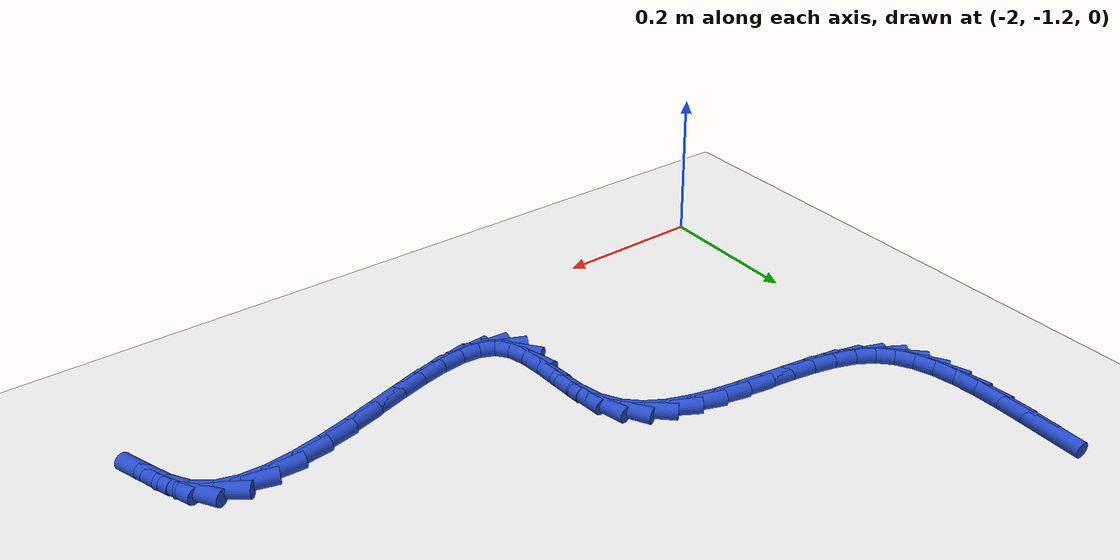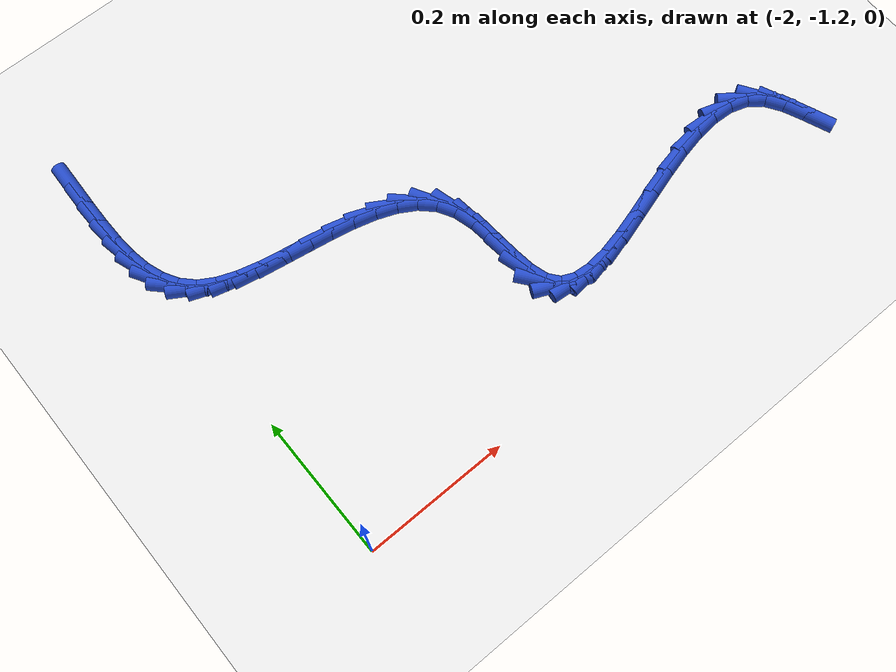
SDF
<sdf version="1.6">
 <world name="default">
  <model name="ground_plane">
   <static>1</static>
   <link name="link">
    <collision name="collision">
     <geometry><plane><normal>0 0 1</normal><size>100 100</size></plane></geometry>
     <surface><friction><ode><mu>100</mu><mu2>50</mu2></ode></friction></surface>
    </collision>
    <visual name="visual">
     <cast_shadows>0</cast_shadows>
     <geometry><plane><normal>0 0 1</normal><size>100 100</size></plane></geometry>
     <material>
      <script><uri>file://media/materials/scripts/gazebo.material</uri><name>Gazebo/WhiteGlow</name></script>
     </material>
    </visual>
   </link>
  </model>
  <model name="line">
   <link name="link_144">
    <pose>-2.011408197093392 -0.5827846574781463 0.01 0 1.57 1.5375655119772171</pose>
    <collision name="collision">
     <geometry><cylinder><radius>0.01</radius><length>0.08</length></cylinder></geometry>
    </collision>
    <visual name="visual">
     <material>
      <script><name>Gazebo/Blue</name><uri>file://media/materials/scripts/gazebo.material</uri></script>
     </material>
     <geometry><cylinder><radius>0.01</radius><length>0.08</length></cylinder></geometry>
    </visual>
   </link>
   <link name="link_145">
    <pose>-2.012506943540537 -0.6158365696737208 0.01 0 1.57 1.5535705072917212</pose>
    <collision name="collision">
     <geometry><cylinder><radius>0.01</radius><length>0.08</length></cylinder></geometry>
    </collision>
    <visual name="visual">
     <material>
      <script><name>Gazebo/Blue</name><uri>file://media/materials/scripts/gazebo.material</uri></script>
     </material>
     <geometry><cylinder><radius>0.01</radius><length>0.08</length></cylinder></geometry>
    </visual>
   </link>
   <link name="link_146">
    <pose>-2.0130630635723454 -0.648117473638683 0.01 0 1.57 -1.5490477566503293</pose>
    <collision name="collision">
     <geometry><cylinder><radius>0.01</radius><length>0.08</length></cylinder></geometry>
    </collision>
    <visual name="visual">
     <material>
      <script><name>Gazebo/Blue</name><uri>file://media/materials/scripts/gazebo.material</uri></script>
     </material>
     <geometry><cylinder><radius>0.01</radius><length>0.08</length></cylinder></geometry>
    </visual>
   </link>
   <link name="link_147">
    <pose>-2.0123883758188064 -0.6791347483313681 0.01 0 1.57 -1.482388076195657</pose>
    <collision name="collision">
     <geometry><cylinder><radius>0.01</radius><length>0.08</length></cylinder></geometry>
    </collision>
    <visual name="visual">
     <material>
      <script><name>Gazebo/Blue</name><uri>file://media/materials/scripts/gazebo.material</uri></script>
     </material>
     <geometry><cylinder><radius>0.01</radius><length>0.08</length></cylinder></geometry>
    </visual>
   </link>
   <link name="link_148">
    <pose>-2.00979469890991 -0.7083957727101123 0.01 0 1.57 -1.3805866140563354</pose>
    <collision name="collision">
     <geometry><cylinder><radius>0.01</radius><length>0.08</length></cylinder></geometry>
    </collision>
    <visual name="visual">
     <material>
      <script><name>Gazebo/Blue</name><uri>file://media/materials/scripts/gazebo.material</uri></script>
     </material>
     <geometry><cylinder><radius>0.01</radius><length>0.08</length></cylinder></geometry>
    </visual>
   </link>
   <link name="link_149">
    <pose>-2.0045938514756445 -0.7354079257332513 0.01 0 1.57 -1.234067620578618</pose>
    <collision name="collision">
     <geometry><cylinder><radius>0.01</radius><length>0.08</length></cylinder></geometry>
    </collision>
    <visual name="visual">
     <material>
      <script><name>Gazebo/Blue</name><uri>file://media/materials/scripts/gazebo.material</uri></script>
     </material>
     <geometry><cylinder><radius>0.01</radius><length>0.08</length></cylinder></geometry>
    </visual>
   </link>
   <link name="link_150">
    <pose>-1.9960976521460005 -0.7596785863591213 0.01 0 1.57 -1.0353618430482645</pose>
    <collision name="collision">
     <geometry><cylinder><radius>0.01</radius><length>0.08</length></cylinder></geometry>
    </collision>
    <visual name="visual">
     <material>
      <script><name>Gazebo/Blue</name><uri>file://media/materials/scripts/gazebo.material</uri></script>
     </material>
     <geometry><cylinder><radius>0.01</radius><length>0.08</length></cylinder></geometry>
    </visual>
   </link>
   <link name="link_151">
    <pose>-1.9836179195509676 -0.7807151335460583 0.01 0 1.57 -0.7900015347232652</pose>
    <collision name="collision">
     <geometry><cylinder><radius>0.01</radius><length>0.08</length></cylinder></geometry>
    </collision>
    <visual name="visual">
     <material>
      <script><name>Gazebo/Blue</name><uri>file://media/materials/scripts/gazebo.material</uri></script>
     </material>
     <geometry><cylinder><radius>0.01</radius><length>0.08</length></cylinder></geometry>
    </visual>
   </link>
   <link name="link_152">
    <pose>-1.966466625082608 -0.7980250669632946 0.01 0 1.57 -0.5430174906835472</pose>
    <collision name="collision">
     <geometry><cylinder><radius>0.01</radius><length>0.08</length></cylinder></geometry>
    </collision>
    <visual name="visual">
     <material>
      <script><name>Gazebo/Blue</name><uri>file://media/materials/scripts/gazebo.material</uri></script>
     </material>
     <geometry><cylinder><radius>0.01</radius><length>0.08</length></cylinder></geometry>
    </visual>
   </link>
   <link name="link_153">
    <pose>-1.9443111703747151 -0.8113967433155336 0.01 0 1.57 -0.36577152715081634</pose>
    <collision name="collision">
     <geometry><cylinder><radius>0.01</radius><length>0.08</length></cylinder></geometry>
    </collision>
    <visual name="visual">
     <material>
      <script><name>Gazebo/Blue</name><uri>file://media/materials/scripts/gazebo.material</uri></script>
     </material>
     <geometry><cylinder><radius>0.01</radius><length>0.08</length></cylinder></geometry>
    </visual>
   </link>
   <link name="link_154">
    <pose>-1.9179337930631957 -0.821499450353367 0.01 0 1.57 -0.25372022160671065</pose>
    <collision name="collision">
     <geometry><cylinder><radius>0.01</radius><length>0.08</length></cylinder></geometry>
    </collision>
    <visual name="visual">
     <material>
      <script><name>Gazebo/Blue</name><uri>file://media/materials/scripts/gazebo.material</uri></script>
     </material>
     <geometry><cylinder><radius>0.01</radius><length>0.08</length></cylinder></geometry>
    </visual>
   </link>
   <link name="link_155">
    <pose>-1.8883347320797776 -0.8291747380338208 0.01 0 1.57 -0.18908170009375883</pose>
    <collision name="collision">
     <geometry><cylinder><radius>0.01</radius><length>0.08</length></cylinder></geometry>
    </collision>
    <visual name="visual">
     <material>
      <script><name>Gazebo/Blue</name><uri>file://media/materials/scripts/gazebo.material</uri></script>
     </material>
     <geometry><cylinder><radius>0.01</radius><length>0.08</length></cylinder></geometry>
    </visual>
   </link>
   <link name="link_156">
    <pose>-1.8565142263561911 -0.8352641563139214 0.01 0 1.57 -0.16037886778629465</pose>
    <collision name="collision">
     <geometry><cylinder><radius>0.01</radius><length>0.08</length></cylinder></geometry>
    </collision>
    <visual name="visual">
     <material>
      <script><name>Gazebo/Blue</name><uri>file://media/materials/scripts/gazebo.material</uri></script>
     </material>
     <geometry><cylinder><radius>0.01</radius><length>0.08</length></cylinder></geometry>
    </visual>
   </link>
   <link name="link_157">
    <pose>-1.8234725148241646 -0.8406092551506948 0.01 0 1.57 -0.1621796730817714</pose>
    <collision name="collision">
     <geometry><cylinder><radius>0.01</radius><length>0.08</length></cylinder></geometry>
    </collision>
    <visual name="visual">
     <material>
      <script><name>Gazebo/Blue</name><uri>file://media/materials/scripts/gazebo.material</uri></script>
     </material>
     <geometry><cylinder><radius>0.01</radius><length>0.08</length></cylinder></geometry>
    </visual>
   </link>
   <link name="link_158">
    <pose>-1.790209836415429 -0.8460515845011677 0.01 0 1.57 -0.19397221060614006</pose>
    <collision name="collision">
     <geometry><cylinder><radius>0.01</radius><length>0.08</length></cylinder></geometry>
    </collision>
    <visual name="visual">
     <material>
      <script><name>Gazebo/Blue</name><uri>file://media/materials/scripts/gazebo.material</uri></script>
     </material>
     <geometry><cylinder><radius>0.01</radius><length>0.08</length></cylinder></geometry>
    </visual>
   </link>
   <link name="link_159">
    <pose>-1.7577264300617137 -0.8524326943223662 0.01 0 1.57 -0.25980357929480663</pose>
    <collision name="collision">
     <geometry><cylinder><radius>0.01</radius><length>0.08</length></cylinder></geometry>
    </collision>
    <visual name="visual">
     <material>
      <script><name>Gazebo/Blue</name><uri>file://media/materials/scripts/gazebo.material</uri></script>
     </material>
     <geometry><cylinder><radius>0.01</radius><length>0.08</length></cylinder></geometry>
    </visual>
   </link>
   <link name="link_160">
    <pose>-1.7270225346947476 -0.8605941345713164 0.01 0 1.57 -0.3685228372203694</pose>
    <collision name="collision">
     <geometry><cylinder><radius>0.01</radius><length>0.08</length></cylinder></geometry>
    </collision>
    <visual name="visual">
     <material>
      <script><name>Gazebo/Blue</name><uri>file://media/materials/scripts/gazebo.material</uri></script>
     </material>
     <geometry><cylinder><radius>0.01</radius><length>0.08</length></cylinder></geometry>
    </visual>
   </link>
   <link name="link_161">
    <pose>-1.6990983892462612 -0.8713774552050453 0.01 0 1.57 -0.5330862943904855</pose>
    <collision name="collision">
     <geometry><cylinder><radius>0.01</radius><length>0.08</length></cylinder></geometry>
    </collision>
    <visual name="visual">
     <material>
      <script><name>Gazebo/Blue</name><uri>file://media/materials/scripts/gazebo.material</uri></script>
     </material>
     <geometry><cylinder><radius>0.01</radius><length>0.08</length></cylinder></geometry>
    </visual>
   </link>
   <link name="link_162">
    <pose>-1.6749542326479838 -0.8856242061805786 0.01 0 1.57 -0.7639802757959904</pose>
    <collision name="collision">
     <geometry><cylinder><radius>0.01</radius><length>0.08</length></cylinder></geometry>
    </collision>
    <visual name="visual">
     <material>
      <script><name>Gazebo/Blue</name><uri>file://media/materials/scripts/gazebo.material</uri></script>
     </material>
     <geometry><cylinder><radius>0.01</radius><length>0.08</length></cylinder></geometry>
    </visual>
   </link>
   <link name="link_163">
    <pose>-1.655590303831645 -0.9041759374549427 0.01 0 1.57 -1.0502910620888788</pose>
    <collision name="collision">
     <geometry><cylinder><radius>0.01</radius><length>0.08</length></cylinder></geometry>
    </collision>
    <visual name="visual">
     <material>
      <script><name>Gazebo/Blue</name><uri>file://media/materials/scripts/gazebo.material</uri></script>
     </material>
     <geometry><cylinder><radius>0.01</radius><length>0.08</length></cylinder></geometry>
    </visual>
   </link>
   <link name="link_164">
    <pose>-1.642006106841814 -0.9278734543143657 0.01 0 1.57 -1.3135320265012669</pose>
    <collision name="collision">
     <geometry><cylinder><radius>0.01</radius><length>0.08</length></cylinder></geometry>
    </collision>
    <visual name="visual">
     <material>
      <script><name>Gazebo/Blue</name><uri>file://media/materials/scripts/gazebo.material</uri></script>
     </material>
     <geometry><cylinder><radius>0.01</radius><length>0.08</length></cylinder></geometry>
    </visual>
   </link>
   <link name="link_165">
    <pose>-1.6344078701818325 -0.9567537255346816 0.01 0 1.57 -1.4545430743227798</pose>
    <collision name="collision">
     <geometry><cylinder><radius>0.01</radius><length>0.08</length></cylinder></geometry>
    </collision>
    <visual name="visual">
     <material>
      <script><name>Gazebo/Blue</name><uri>file://media/materials/scripts/gazebo.material</uri></script>
     </material>
     <geometry><cylinder><radius>0.01</radius><length>0.08</length></cylinder></geometry>
    </visual>
   </link>
   <link name="link_166">
    <pose>-1.6306982690775231 -0.9885194991426001 0.01 0 1.57 -1.4978328138608137</pose>
    <collision name="collision">
     <geometry><cylinder><radius>0.01</radius><length>0.08</length></cylinder></geometry>
    </collision>
    <visual name="visual">
     <material>
      <script><name>Gazebo/Blue</name><uri>file://media/materials/scripts/gazebo.material</uri></script>
     </material>
     <geometry><cylinder><radius>0.01</radius><length>0.08</length></cylinder></geometry>
    </visual>
   </link>
   <link name="link_167">
    <pose>-1.6283642027698078 -1.0204522119060808 0.01 0 1.57 -1.4531829214655159</pose>
    <collision name="collision">
     <geometry><cylinder><radius>0.01</radius><length>0.08</length></cylinder></geometry>
    </collision>
    <visual name="visual">
     <material>
      <script><name>Gazebo/Blue</name><uri>file://media/materials/scripts/gazebo.material</uri></script>
     </material>
     <geometry><cylinder><radius>0.01</radius><length>0.08</length></cylinder></geometry>
    </visual>
   </link>
   <link name="link_168">
    <pose>-1.6248925704996062 -1.049833300593084 0.01 0 1.57 -1.2835673778462682</pose>
    <collision name="collision">
     <geometry><cylinder><radius>0.01</radius><length>0.08</length></cylinder></geometry>
    </collision>
    <visual name="visual">
     <material>
      <script><name>Gazebo/Blue</name><uri>file://media/materials/scripts/gazebo.material</uri></script>
     </material>
     <geometry><cylinder><radius>0.01</radius><length>0.08</length></cylinder></geometry>
    </visual>
   </link>
   <link name="link_169">
    <pose>-1.6177702715078386 -1.0739442019715681 0.01 0 1.57 -0.8988152373379019</pose>
    <collision name="collision">
     <geometry><cylinder><radius>0.01</radius><length>0.08</length></cylinder></geometry>
    </collision>
    <visual name="visual">
     <material>
      <script><name>Gazebo/Blue</name><uri>file://media/materials/scripts/gazebo.material</uri></script>
     </material>
     <geometry><cylinder><radius>0.01</radius><length>0.08</length></cylinder></geometry>
    </visual>
   </link>
   <link name="link_170">
    <pose>-1.604723804306929 -1.0903448718289717 0.01 0 1.57 -0.42616814133873415</pose>
    <collision name="collision">
     <geometry><cylinder><radius>0.01</radius><length>0.08</length></cylinder></geometry>
    </collision>
    <visual name="visual">
     <material>
      <script><name>Gazebo/Blue</name><uri>file://media/materials/scripts/gazebo.material</uri></script>
     </material>
     <geometry><cylinder><radius>0.01</radius><length>0.08</length></cylinder></geometry>
    </visual>
   </link>
   <link name="link_171">
    <pose>-1.585579519135308 -1.0990362109527143 0.01 0 1.57 -0.09209551775108663</pose>
    <collision name="collision">
     <geometry><cylinder><radius>0.01</radius><length>0.08</length></cylinder></geometry>
    </collision>
    <visual name="visual">
     <material>
      <script><name>Gazebo/Blue</name><uri>file://media/materials/scripts/gazebo.material</uri></script>
     </material>
     <geometry><cylinder><radius>0.01</radius><length>0.08</length></cylinder></geometry>
    </visual>
   </link>
   <link name="link_172">
    <pose>-1.561251122596707 -1.1012831032249306 0.01 0 1.57 0.10185154908780952</pose>
    <collision name="collision">
     <geometry><cylinder><radius>0.01</radius><length>0.08</length></cylinder></geometry>
    </collision>
    <visual name="visual">
     <material>
      <script><name>Gazebo/Blue</name><uri>file://media/materials/scripts/gazebo.material</uri></script>
     </material>
     <geometry><cylinder><radius>0.01</radius><length>0.08</length></cylinder></geometry>
    </visual>
   </link>
   <link name="link_173">
    <pose>-1.5326614930565192 -1.0983610941213773 0.01 0 1.57 0.21030426065593424</pose>
    <collision name="collision">
     <geometry><cylinder><radius>0.01</radius><length>0.08</length></cylinder></geometry>
    </collision>
    <visual name="visual">
     <material>
      <script><name>Gazebo/Blue</name><uri>file://media/materials/scripts/gazebo.material</uri></script>
     </material>
     <geometry><cylinder><radius>0.01</radius><length>0.08</length></cylinder></geometry>
    </visual>
   </link>
   <link name="link_174">
    <pose>-1.500733508880138 -1.0915457291178101 0.01 0 1.57 0.2680609339041422</pose>
    <collision name="collision">
     <geometry><cylinder><radius>0.01</radius><length>0.08</length></cylinder></geometry>
    </collision>
    <visual name="visual">
     <material>
      <script><name>Gazebo/Blue</name><uri>file://media/materials/scripts/gazebo.material</uri></script>
     </material>
     <geometry><cylinder><radius>0.01</radius><length>0.08</length></cylinder></geometry>
    </visual>
   </link>
   <link name="link_175">
    <pose>-1.4663900484329546 -1.0821125536899863 0.01 0 1.57 0.29208704000167607</pose>
    <collision name="collision">
     <geometry><cylinder><radius>0.01</radius><length>0.08</length></cylinder></geometry>
    </collision>
    <visual name="visual">
     <material>
      <script><name>Gazebo/Blue</name><uri>file://media/materials/scripts/gazebo.material</uri></script>
     </material>
     <geometry><cylinder><radius>0.01</radius><length>0.08</length></cylinder></geometry>
    </visual>
   </link>
   <link name="link_176">
    <pose>-1.4305539900803648 -1.0713371133136622 0.01 0 1.57 0.2894503252288289</pose>
    <collision name="collision">
     <geometry><cylinder><radius>0.01</radius><length>0.08</length></cylinder></geometry>
    </collision>
    <visual name="visual">
     <material>
      <script><name>Gazebo/Blue</name><uri>file://media/materials/scripts/gazebo.material</uri></script>
     </material>
     <geometry><cylinder><radius>0.01</radius><length>0.08</length></cylinder></geometry>
    </visual>
   </link>
   <link name="link_177">
    <pose>-1.3941482121877584 -1.0604949534645938 0.01 0 1.57 0.2611021674977238</pose>
    <collision name="collision">
     <geometry><cylinder><radius>0.01</radius><length>0.08</length></cylinder></geometry>
    </collision>
    <visual name="visual">
     <material>
      <script><name>Gazebo/Blue</name><uri>file://media/materials/scripts/gazebo.material</uri></script>
     </material>
     <geometry><cylinder><radius>0.01</radius><length>0.08</length></cylinder></geometry>
    </visual>
   </link>
   <link name="link_178">
    <pose>-1.3580955931205303 -1.0508616196185379 0.01 0 1.57 0.2027439038657691</pose>
    <collision name="collision">
     <geometry><cylinder><radius>0.01</radius><length>0.08</length></cylinder></geometry>
    </collision>
    <visual name="visual">
     <material>
      <script><name>Gazebo/Blue</name><uri>file://media/materials/scripts/gazebo.material</uri></script>
     </material>
     <geometry><cylinder><radius>0.01</radius><length>0.08</length></cylinder></geometry>
    </visual>
   </link>
   <link name="link_179">
    <pose>-1.3233190112440731 -1.043712657251251 0.01 0 1.57 0.10365685907721298</pose>
    <collision name="collision">
     <geometry><cylinder><radius>0.01</radius><length>0.08</length></cylinder></geometry>
    </collision>
    <visual name="visual">
     <material>
      <script><name>Gazebo/Blue</name><uri>file://media/materials/scripts/gazebo.material</uri></script>
     </material>
     <geometry><cylinder><radius>0.01</radius><length>0.08</length></cylinder></geometry>
    </visual>
   </link>
   <link name="link_180">
    <pose>-1.2907413449237795 -1.0403236118384895 0.01 0 1.57 -0.055836256855559506</pose>
    <collision name="collision">
     <geometry><cylinder><radius>0.01</radius><length>0.08</length></cylinder></geometry>
    </collision>
    <visual name="visual">
     <material>
      <script><name>Gazebo/Blue</name><uri>file://media/materials/scripts/gazebo.material</uri></script>
     </material>
     <geometry><cylinder><radius>0.01</radius><length>0.08</length></cylinder></geometry>
    </visual>
   </link>
   <link name="link_181">
    <pose>-1.2612854725250422 -1.0419700288560096 0.01 0 1.57 -0.3034736184040165</pose>
    <collision name="collision">
     <geometry><cylinder><radius>0.01</radius><length>0.08</length></cylinder></geometry>
    </collision>
    <visual name="visual">
     <material>
      <script><name>Gazebo/Blue</name><uri>file://media/materials/scripts/gazebo.material</uri></script>
     </material>
     <geometry><cylinder><radius>0.01</radius><length>0.08</length></cylinder></geometry>
    </visual>
   </link>
   <link name="link_182">
    <pose>-1.235874272413255 -1.0499274537795682 0.01 0 1.57 -0.6500444574352661</pose>
    <collision name="collision">
     <geometry><cylinder><radius>0.01</radius><length>0.08</length></cylinder></geometry>
    </collision>
    <visual name="visual">
     <material>
      <script><name>Gazebo/Blue</name><uri>file://media/materials/scripts/gazebo.material</uri></script>
     </material>
     <geometry><cylinder><radius>0.01</radius><length>0.08</length></cylinder></geometry>
    </visual>
   </link>
   <link name="link_183">
    <pose>-1.2154301063325699 -1.0654706329746684 0.01 0 1.57 -0.9895113240006855</pose>
    <collision name="collision">
     <geometry><cylinder><radius>0.01</radius><length>0.08</length></cylinder></geometry>
    </collision>
    <visual name="visual">
     <material>
      <script><name>Gazebo/Blue</name><uri>file://media/materials/scripts/gazebo.material</uri></script>
     </material>
     <geometry><cylinder><radius>0.01</radius><length>0.08</length></cylinder></geometry>
    </visual>
   </link>
   <link name="link_184">
    <pose>-1.2001419935450222 -1.0887399779194973 0.01 0 1.57 -1.1583616439226936</pose>
    <collision name="collision">
     <geometry><cylinder><radius>0.01</radius><length>0.08</length></cylinder></geometry>
    </collision>
    <visual name="visual">
     <material>
      <script><name>Gazebo/Blue</name><uri>file://media/materials/scripts/gazebo.material</uri></script>
     </material>
     <geometry><cylinder><radius>0.01</radius><length>0.08</length></cylinder></geometry>
    </visual>
   </link>
   <link name="link_185">
    <pose>-1.1880043620910192 -1.1164813041881552 0.01 0 1.57 -1.1881386565873044</pose>
    <collision name="collision">
     <geometry><cylinder><radius>0.01</radius><length>0.08</length></cylinder></geometry>
    </collision>
    <visual name="visual">
     <material>
      <script><name>Gazebo/Blue</name><uri>file://media/materials/scripts/gazebo.material</uri></script>
     </material>
     <geometry><cylinder><radius>0.01</radius><length>0.08</length></cylinder></geometry>
    </visual>
   </link>
  </model>
 </world>
</sdf>
